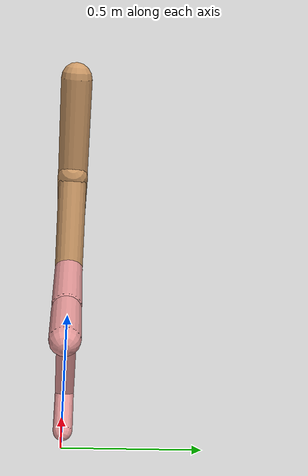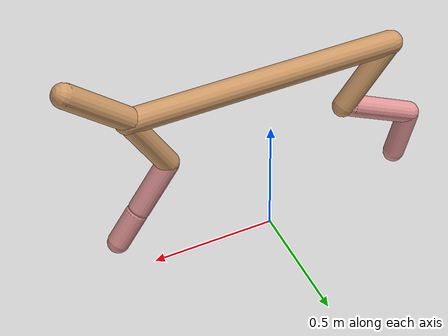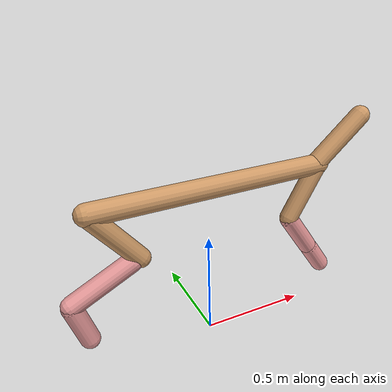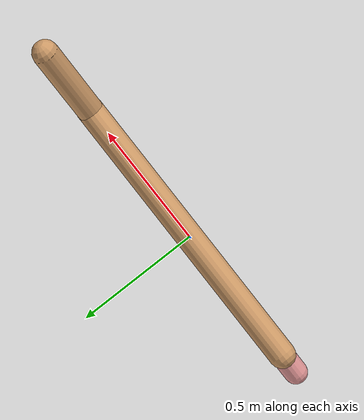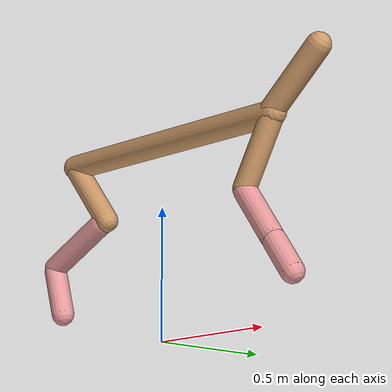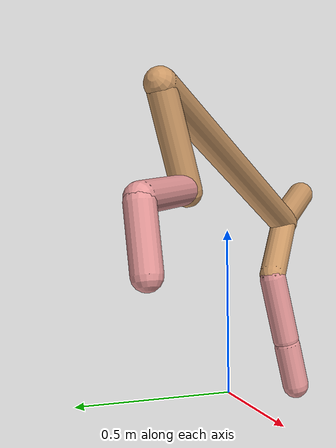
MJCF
<mujoco model="cheetah">
  <compiler angle="radian" coordinate="local" inertiafromgeom="true" settotalmass="14" />
  <default>
    <joint armature=".1" damping=".01" limited="true" solimplimit="0 .8 .03" solreflimit=".02 1" stiffness="8" />
    <geom conaffinity="0" condim="3" contype="1" friction="0.8 .1 .1" rgba="0.8 0.6 .4 1" solimp="0.0 0.8 0.01" solref="0.02 1" />
    <motor ctrllimited="true" ctrlrange="-1 1" />
  </default>
  <size nstack="300000" nuser_geom="1" />
  <option gravity="0 0 -9.81" timestep="0.01" />
  <worldbody>
    <body name="torso" pos="0.0 0.0 0.7458827053736683">
      <joint armature="0" axis="1 0 0" damping="0" limited="false" name="ignorex" pos="0 0 0" stiffness="0" type="slide" />
      <joint armature="0" axis="0 0 1" damping="0" limited="false" name="ignorez" pos="0 0 0" stiffness="0" type="slide" />
      <joint armature="0" axis="0 1 0" damping="0" limited="false" name="ignorey" pos="0 0 0" stiffness="0" type="hinge" />
      <geom fromto="-0.5 0.0 0.0 0.5653162890386525 0.0 0.0" name="torso" size="0.04710075530290836" type="capsule" />
      <geom axisangle="0 1 0 .87" name="head" pos="0.6653162890386525 0.0 0.1" size="0.04603200536170834 0.15" type="capsule" />

      <body name="bthigh" pos="-.5 0 0">
        <joint axis="0 1 0" damping="6" name="bthigh" pos="0 0 0" range="-.52 1.05" stiffness="240" type="hinge" />
        <geom axisangle="0 1 0 -3.8" name="bthigh" pos="0.10025907442287489 0.0 -0.13033679674973736" size="0.04350934642161163 0.14542491364678203" type="capsule" />
        <body name="bshin" pos="0.16051814884574978 0.0 -0.2506735934994747">
          <joint axis="0 1 0" damping="4.5" name="bshin" pos="0 0 0" range="-.785 .785" stiffness="180" type="hinge" />
          <geom axisangle="0 1 0 -2.03" name="bshin" pos="-0.14039315964087118 0.0 -0.07019657982043559" rgba="0.9 0.6 0.6 1" size="0.04350934642161163 0.15043956584149867" type="capsule" />
          <body name="bfoot" pos="-0.28078631928174236 0.0 -0.14039315964087118">
            <joint axis="0 1 0" damping="3" name="bfoot" pos="0 0 0" range="-.4 .785" stiffness="120" type="hinge" />
            <geom axisangle="0 1 0 -.27" name="bfoot" pos="0.030081390462366662 0.0 -0.09726316249498555" rgba="0.9 0.6 0.6 1" size="0.04350934642161163 0.0942754612606725" type="capsule" />
            <inertial mass="10" />
          </body>
        </body>
      </body>
      <body name="fthigh" pos="0.5653162890386525 0.0 0.0">
        <joint axis="0 1 0" damping="4.5" name="fthigh" pos="0 0 0" range="-1.5 0.8" stiffness="180" type="hinge" />
        <geom axisangle="0 1 0 .52" name="fthigh" pos="-0.07321634147781363 0.0 -0.12551372824768048" size="0.04361399382954037 0.1393832634044957" type="capsule" />
        <body name="fshin" pos="-0.14643268295562725 0.0 -0.25102745649536096">
          <joint axis="0 1 0" damping="3" name="fshin" pos="0 0 0" range="-1.2 1.1" stiffness="120" type="hinge" />
          <geom axisangle="0 1 0 -.6" name="fshin" pos="0.06797863221924404 0.0 -0.09412425999587636" rgba="0.9 0.6 0.6 1" size="0.04361399382954037 0.11108741293892138" type="capsule" />
          <body name="ffoot" pos="0.13595726443848807 0.0 -0.1882485199917527">
            <joint axis="0 1 0" damping="1.5" name="ffoot" pos="0 0 0" range="-3.1 -0.3" stiffness="60" type="hinge" />
            <geom axisangle="0 1 0 -.6" name="ffoot" pos="0.046816735864913 0.0 -0.07282603356764245" rgba="0.9 0.6 0.6 1" size="0.04361399382954037 0.07335961231815563" type="capsule" />
            <inertial mass="10" />
          </body>
        </body>
      </body>
    </body>
  </worldbody>
  <actuator>
    <motor gear="120" joint="bthigh" name="bthigh" />
    <motor gear="90" joint="bshin" name="bshin" />
    <motor gear="60" joint="bfoot" name="bfoot" />
    <motor gear="120" joint="fthigh" name="fthigh" />
    <motor gear="60" joint="fshin" name="fshin" />
    <motor gear="30" joint="ffoot" name="ffoot" />
  </actuator>
</mujoco>
